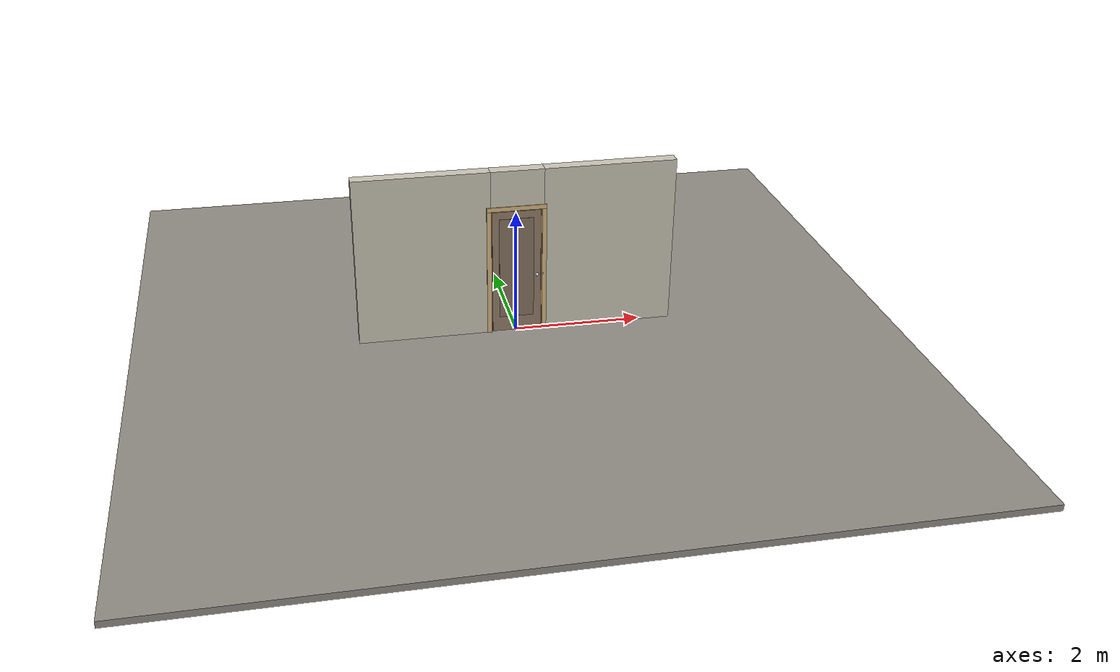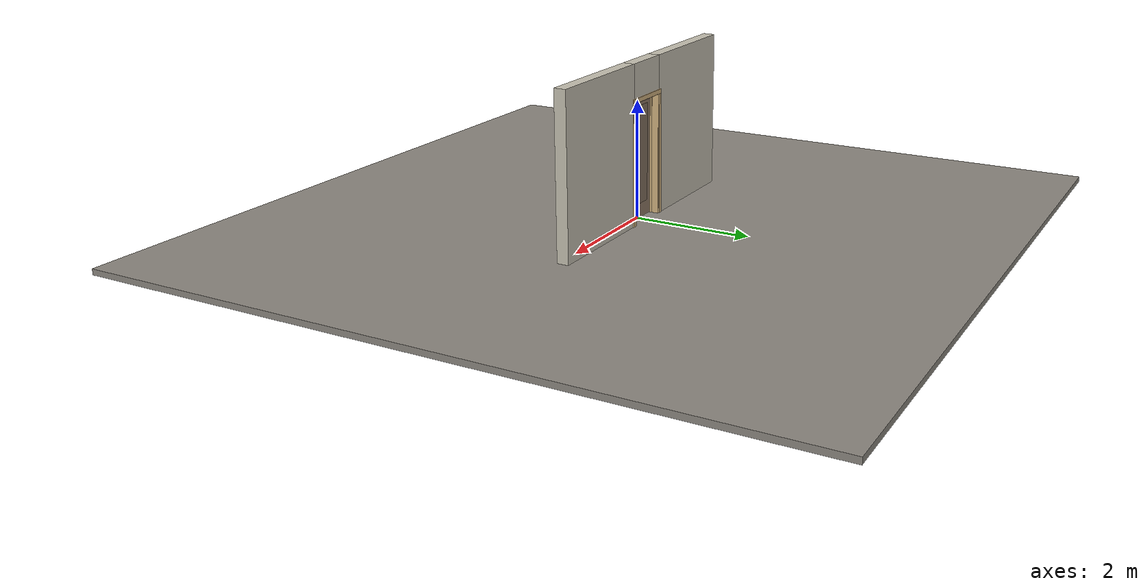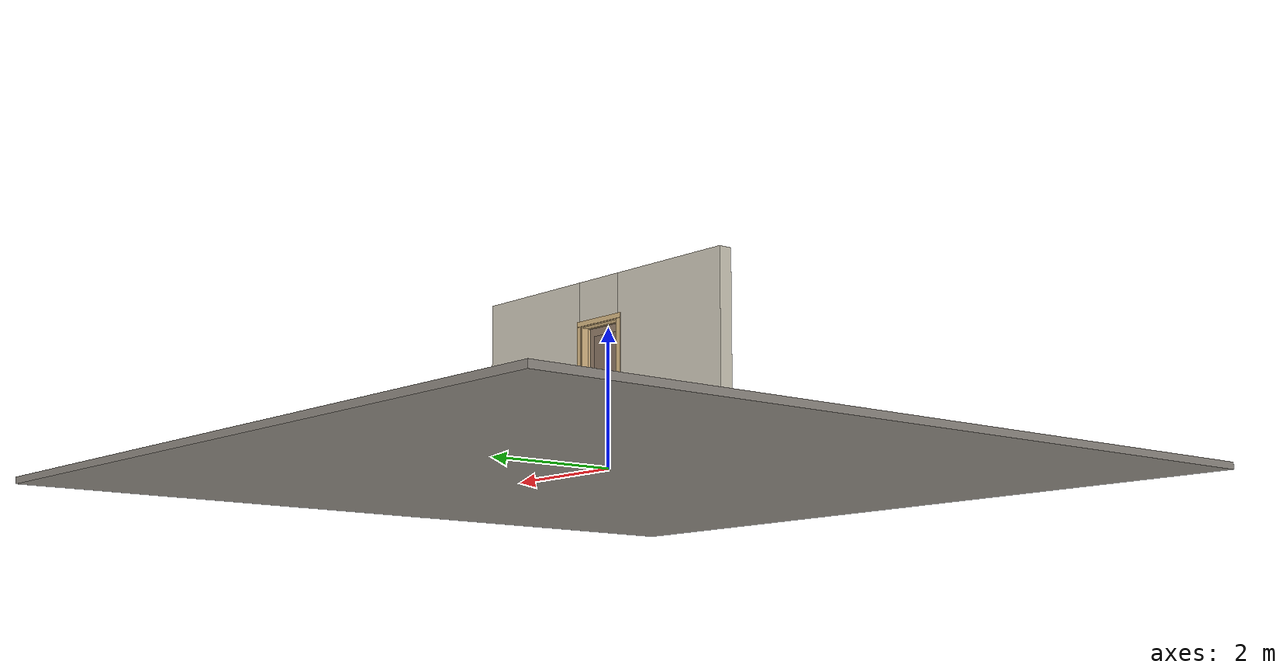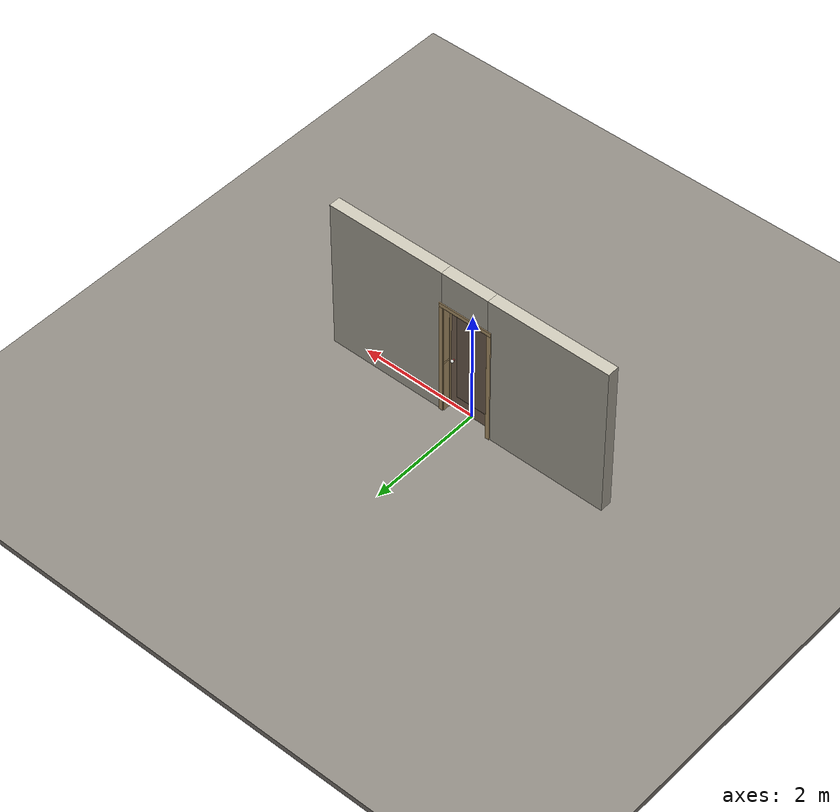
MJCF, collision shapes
<?xml version="1.0" ?>
<mujoco model="db0954_swing_single_full">
  <compiler angle="radian" meshdir="../../hardware" texturedir="../../textures" autolimits="true" inertiafromgeom="false"/>
  <option timestep="0.002" integrator="implicitfast" cone="elliptic" impratio="10" noslip_iterations="3">
    <flag multiccd="enable"/>
  </option>
  <size memory="16M"/>
  <default>
    <geom condim="4" solref="0.005 1" solimp="0.95 0.99 0.001"/>
    <joint solreflimit="0.005 1" solimplimit="0.95 0.99 0.001"/>
    <tendon solreflimit="0.005 1"/>
    <equality solref="0.002 1"/>
  </default>
  <visual>
    <headlight ambient="0.4 0.4 0.4" diffuse="0.7 0.7 0.7" specular="0.2 0.2 0.2"/>
    <quality shadowsize="4096"/>
    <map znear="0.01" zfar="60"/>
  </visual>
  <asset>
    <mesh name="hinge_2af0f4d6ca" file="hinge_2af0f4d6ca.obj"/>
    <mesh name="hinge_jamb_c0c0a62ada" file="hinge_jamb_c0c0a62ada.obj"/>
    <mesh name="knob_d6523d5571" file="knob_d6523d5571.obj"/>
    <material name="mat_floor" rgba="0.55 0.53 0.5 1" specular="0.2" shininess="0.15" reflectance="0"/>
    <material name="mat_wall" rgba="0.78 0.76 0.7 1" specular="0.2" shininess="0.1" reflectance="0"/>
    <material name="mat_leaf" rgba="0.56 0.475 0.4 1" specular="0.2" shininess="0.5" reflectance="0"/>
    <material name="mat_leaf_panel" rgba="0.515 0.437 0.368 1" specular="0.2" shininess="0.5" reflectance="0"/>
    <material name="mat_hinge" rgba="0.65 0.66 0.68 1" specular="0.74" shininess="0.5" reflectance="0.36"/>
    <material name="mat_op_pvc" rgba="0.92 0.92 0.9 1" specular="0.2" shininess="0.6" reflectance="0"/>
    <material name="mat_trim" rgba="0.85 0.66 0.3 1" specular="0.8" shininess="0.75" reflectance="0.4"/>
    <material name="mat_bolt" rgba="0.85 0.66 0.3 1" specular="0.8" shininess="0.75" reflectance="0.4"/>
    <material name="mat_frame" rgba="0.82 0.7 0.5 1" specular="0.2" shininess="0.45" reflectance="0"/>
    <texture name="skybox" type="skybox" builtin="gradient" rgb1="0.6 0.7 0.85" rgb2="0.9 0.92 0.95" width="256" height="256"/>
  </asset>
  <worldbody>
    <light name="sun" pos="1.5 -2.5 4" dir="-0.3 0.5 -0.8" directional="true" diffuse="0.8 0.8 0.8" specular="0.3 0.3 0.3" castshadow="true"/>
    <light name="fill" pos="-1.5 2.5 3" dir="0.3 -0.5 -0.7" directional="true" diffuse="0.35 0.35 0.4" castshadow="false"/>
    <camera name="robot_view" pos="0 -2.471187 1.734312" xyaxes="1 0 0 0 0.26963 0.962964" fovy="52"/>
    <camera name="far_view" pos="0 2.613187 1.734312" xyaxes="-1 0 0 0 -0.26963 0.962964" fovy="52"/>
    <camera name="iso" pos="1.932062 -2.064437 2.141063" xyaxes="0.741536 0.670913 0 -0.242917 0.268487 0.932151" fovy="46"/>
    <camera name="detail_handle" pos="0.5 -0.8685 1.245" xyaxes="0.97561 0.219512 0 -0.070934 0.315262 0.94635" fovy="38"/>
    <geom name="floor" type="box" size="6 6 0.05" pos="0 0 -0.05" material="mat_floor" group="0" contype="1" conaffinity="1" friction="0.8 0.005 0.0001" density="2400"/>
    <geom name="wall_left" type="box" size="1.048 0.1 1.35" pos="-1.452 0.071 1.35" material="mat_wall" group="0" contype="1" conaffinity="1" friction="0.6 0.005 0.0001" density="800"/>
    <geom name="wall_right" type="box" size="1.033 0.1 1.35" pos="1.467 0.071 1.35" material="mat_wall" group="0" contype="1" conaffinity="1" friction="0.6 0.005 0.0001" density="800"/>
    <geom name="wall_header" type="box" size="0.419 0.1 0.303" pos="0.015 0.071 2.397" material="mat_wall" group="0" contype="1" conaffinity="1" friction="0.6 0.005 0.0001" density="800"/>
    <geom name="hinge_0_jamb" type="mesh" mesh="hinge_jamb_c0c0a62ada" pos="-0.382 -0.029 0.259" material="mat_hinge" group="1" contype="0" conaffinity="0" density="7850"/>
    <geom name="hinge_1_jamb" type="mesh" mesh="hinge_jamb_c0c0a62ada" pos="-0.382 -0.029 1.025" material="mat_hinge" group="1" contype="0" conaffinity="0" density="7850"/>
    <geom name="hinge_2_jamb" type="mesh" mesh="hinge_jamb_c0c0a62ada" pos="-0.382 -0.029 1.861" material="mat_hinge" group="1" contype="0" conaffinity="0" density="7850"/>
    <geom name="jamb_hinge" type="box" size="0.0095 0.1 1.0225" pos="-0.3945 0.071 1.0225" material="mat_frame" group="0" contype="1" conaffinity="1" friction="0.6 0.005 0.0001" density="400"/>
    <geom name="strike_965_wall_n" type="box" size="0.0245 0.081575 0.0167" pos="0.4095 0.089425 0.965" material="mat_frame" group="0" contype="1" conaffinity="1" friction="0.6 0.005 0.0001" density="400"/>
    <geom name="strike_965_wall_p" type="box" size="0.0245 0.008 0.0167" pos="0.4095 -0.01585 0.965" material="mat_frame" group="0" contype="1" conaffinity="1" friction="0.6 0.005 0.0001" density="400"/>
    <geom name="strike_965_ramp" type="box" size="0.0245 0.01649 0.0167" pos="0.414136 -0.028673 0.965" quat="0.977148 0 0 0.212558" material="mat_frame" group="0" contype="1" conaffinity="1" friction="0.12 0.005 0.0001" density="400"/>
    <geom name="strike_965_back" type="box" size="0.01615 0.00785 0.0167" pos="0.41785 0 0.965" material="mat_frame" group="0" contype="1" conaffinity="1" friction="0.6 0.005 0.0001" density="400"/>
    <geom name="jamb_strike_0" type="box" size="0.0245 0.1 0.47415" pos="0.4095 0.071 0.47415" material="mat_frame" group="0" contype="1" conaffinity="1" friction="0.6 0.005 0.0001" density="400"/>
    <geom name="jamb_strike_1" type="box" size="0.0245 0.1 0.53165" pos="0.4095 0.071 1.51335" material="mat_frame" group="0" contype="1" conaffinity="1" friction="0.6 0.005 0.0001" density="400"/>
    <geom name="jamb_head" type="box" size="0.419 0.1 0.0095" pos="0.015 0.071 2.0545" material="mat_frame" group="0" contype="1" conaffinity="1" friction="0.6 0.005 0.0001" density="400"/>
    <geom name="head_stud" type="box" size="0.419 0.1 0.015" pos="0.015 0.071 2.079" material="mat_wall" group="0" contype="1" conaffinity="1" friction="0.6 0.005 0.0001" density="500"/>
    <geom name="stop_hinge" type="box" size="0.0055 0.016 1.0225" pos="-0.3795 0.0385 1.0225" material="mat_frame" group="0" contype="1" conaffinity="1" friction="0.6 0.005 0.0001" density="400"/>
    <geom name="stop_strike" type="box" size="0.0055 0.016 1.0225" pos="0.3795 0.0385 1.0225" material="mat_frame" group="0" contype="1" conaffinity="1" friction="0.6 0.005 0.0001" density="400"/>
    <geom name="stop_head" type="box" size="0.385 0.016 0.0055" pos="0 0.0385 2.0395" material="mat_frame" group="0" contype="1" conaffinity="1" friction="0.6 0.005 0.0001" density="400"/>
    <geom name="casing_l_n" type="box" size="0.035 0.008 1.032" pos="-0.434 -0.037 1.0225" material="mat_frame" group="2" contype="0" conaffinity="0" density="400"/>
    <geom name="casing_r_n" type="box" size="0.035 0.008 1.032" pos="0.434 -0.037 1.0225" material="mat_frame" group="2" contype="0" conaffinity="0" density="400"/>
    <geom name="casing_h_n" type="box" size="0.469 0.008 0.035" pos="0 -0.037 2.094" material="mat_frame" group="2" contype="0" conaffinity="0" density="400"/>
    <geom name="casing_l_p" type="box" size="0.035 0.008 1.032" pos="-0.434 0.179 1.0225" material="mat_frame" group="2" contype="0" conaffinity="0" density="400"/>
    <geom name="casing_r_p" type="box" size="0.035 0.008 1.032" pos="0.434 0.179 1.0225" material="mat_frame" group="2" contype="0" conaffinity="0" density="400"/>
    <geom name="casing_h_p" type="box" size="0.469 0.008 0.035" pos="0 0.179 2.094" material="mat_frame" group="2" contype="0" conaffinity="0" density="400"/>
    <site name="approach_point" pos="0 -1.5 0" quat="1 0 0 0" size="0.05" rgba="0.2 0.9 0.2 0.5" group="4"/>
    <site name="goal_point" pos="0 1.5 0" quat="1 0 0 0" size="0.05" rgba="0.2 0.9 0.2 0.5" group="4"/>
    <site name="door_plane_center" pos="0 0 1.0225" quat="1 0 0 0" size="0.02" rgba="0.2 0.9 0.2 0.5" group="4"/>
    <body name="leaf" pos="-0.385 0 0">
      <inertial pos="0.380442 -0.000149 1.025221" mass="47.690227" quat="-0.499794 0.50036 -0.499635 -0.500211" diaginertia="2.360416755 16.450593445 18.79531945"/>
      <joint name="leaf_hinge" type="hinge" axis="0 0 -1" pos="0.003 -0.029 0" limited="true" range="0 1.745329" damping="2.123726" frictionloss="0.320478" stiffness="6.6" springref="-0.409091" armature="0.02"/>
      <geom name="leaf_slab" type="box" size="0.381 0.022 1.016" pos="0.384 0 1.025" material="mat_leaf" group="0" contype="1" conaffinity="1" friction="0.4 0.005 0.0001" density="1"/>
      <geom name="leaf_panel_0_n" type="box" size="0.271 0.003 0.83344" pos="0.384 -0.025 1.08596" material="mat_leaf_panel" group="1" contype="0" conaffinity="0" density="1"/>
      <geom name="leaf_panel_0_p" type="box" size="0.271 0.003 0.83344" pos="0.384 0.025 1.08596" material="mat_leaf_panel" group="1" contype="0" conaffinity="0" density="1"/>
      <geom name="hinge_0" type="mesh" mesh="hinge_2af0f4d6ca" pos="0.003 -0.029 0.259" material="mat_hinge" group="1" contype="0" conaffinity="0" density="7850"/>
      <geom name="hinge_1" type="mesh" mesh="hinge_2af0f4d6ca" pos="0.003 -0.029 1.025" material="mat_hinge" group="1" contype="0" conaffinity="0" density="7850"/>
      <geom name="hinge_2" type="mesh" mesh="hinge_2af0f4d6ca" pos="0.003 -0.029 1.861" material="mat_hinge" group="1" contype="0" conaffinity="0" density="7850"/>
      <geom name="leaf_latch_bolt_faceplate" type="box" size="0.0006 0.01235 0.0267" pos="0.7644 0 0.965" material="mat_bolt" group="1" contype="0" conaffinity="0" density="8500"/>
      <site name="leaf_edge_mid" pos="0.765 0 1.016" quat="1 0 0 0" size="0.02" rgba="0.2 0.9 0.2 0.5" group="4"/>
      <body name="leaf_handle" pos="0.705 0 0.965">
        <inertial pos="0 0 0" mass="3.583139" quat="0.5 0.5 0.5 0.5" diaginertia="0.00357977 0.014614965 0.014614965"/>
        <joint name="leaf_handle_hinge" type="hinge" axis="0 -1 0" limited="true" range="0 0.87" damping="0.164802" frictionloss="0.039" stiffness="0.5" springref="-0.5" armature="0.01"/>
        <geom name="leaf_handle_spindle" type="cylinder" size="0.006 0.03" pos="0 0 0" quat="0.707107 -0.707107 0 0" material="mat_op_pvc" group="1" contype="0" conaffinity="0" density="7850"/>
        <geom name="leaf_handle_knob_n" type="mesh" mesh="knob_d6523d5571" pos="0 -0.022 0" quat="0.707107 0.707107 0 0" material="mat_op_pvc" group="1" contype="0" conaffinity="0" density="3000"/>
        <geom name="leaf_handle_knob_col_n" type="sphere" size="0.0243" pos="0 -0.0685 0" material="mat_op_pvc" group="0" contype="1" conaffinity="1" friction="0.15 0.01 0.0001" density="3000"/>
        <geom name="leaf_handle_knob_neck_n" type="cylinder" size="0.011 0.012" pos="0 -0.034 0" quat="0.707107 -0.707107 0 0" material="mat_op_pvc" group="3" contype="1" conaffinity="1" rgba="0.8 0.3 0.3 0.25" friction="0.6 0.005 0.0001" density="3000"/>
        <geom name="leaf_handle_knob_p" type="mesh" mesh="knob_d6523d5571" pos="0 0.022 0" quat="-0.707107 0.707107 0 0" material="mat_op_pvc" group="1" contype="0" conaffinity="0" density="3000"/>
        <geom name="leaf_handle_knob_col_p" type="sphere" size="0.0243" pos="0 0.0685 0" material="mat_op_pvc" group="0" contype="1" conaffinity="1" friction="0.15 0.01 0.0001" density="3000"/>
        <geom name="leaf_handle_knob_neck_p" type="cylinder" size="0.011 0.012" pos="0 0.034 0" quat="0.707107 -0.707107 0 0" material="mat_op_pvc" group="3" contype="1" conaffinity="1" rgba="0.8 0.3 0.3 0.25" friction="0.6 0.005 0.0001" density="3000"/>
        <site name="leaf_handle_grip_n" pos="0 -0.0685 0" quat="1 0 0 0" size="0.012" rgba="0.2 0.9 0.2 0.5" group="4"/>
        <site name="leaf_handle_grip_p" pos="0 0.0685 0" quat="1 0 0 0" size="0.012" rgba="0.2 0.9 0.2 0.5" group="4"/>
      </body>
      <body name="leaf_latch_bolt" pos="0.765 0 0.965">
        <inertial pos="-0.00865 0 0" mass="0.041419" quat="0.92388 -0.382683 0 0" diaginertia="0.000000798 0.000005598 0.000005598"/>
        <joint name="leaf_latch_bolt_slide" type="slide" axis="-1 0 0" limited="true" range="0 0.0127" damping="2" frictionloss="0.3" stiffness="300" springref="-0.008333" armature="0.1"/>
        <geom name="leaf_latch_bolt_capsule" type="capsule" size="0.00635 0.015" pos="-0.00865 0 0" quat="0.707107 0 0.707107 0" material="mat_bolt" group="0" contype="1" conaffinity="1" friction="0.2 0.005 0.0001" density="8500"/>
      </body>
    </body>
  </worldbody>
  <tendon>
    <fixed name="leaf_latch_bolt_coupling" limited="true" range="0 10">
      <joint joint="leaf_latch_bolt_slide" coef="1"/>
      <joint joint="leaf_handle_hinge" coef="-0.015679"/>
    </fixed>
  </tendon>
  <sensor>
    <jointpos name="leaf_hinge_pos" joint="leaf_hinge"/>
    <jointvel name="leaf_hinge_vel" joint="leaf_hinge"/>
    <jointpos name="leaf_handle_hinge_pos" joint="leaf_handle_hinge"/>
    <jointvel name="leaf_handle_hinge_vel" joint="leaf_handle_hinge"/>
    <jointpos name="leaf_latch_bolt_slide_pos" joint="leaf_latch_bolt_slide"/>
    <jointvel name="leaf_latch_bolt_slide_vel" joint="leaf_latch_bolt_slide"/>
  </sensor>
</mujoco>
